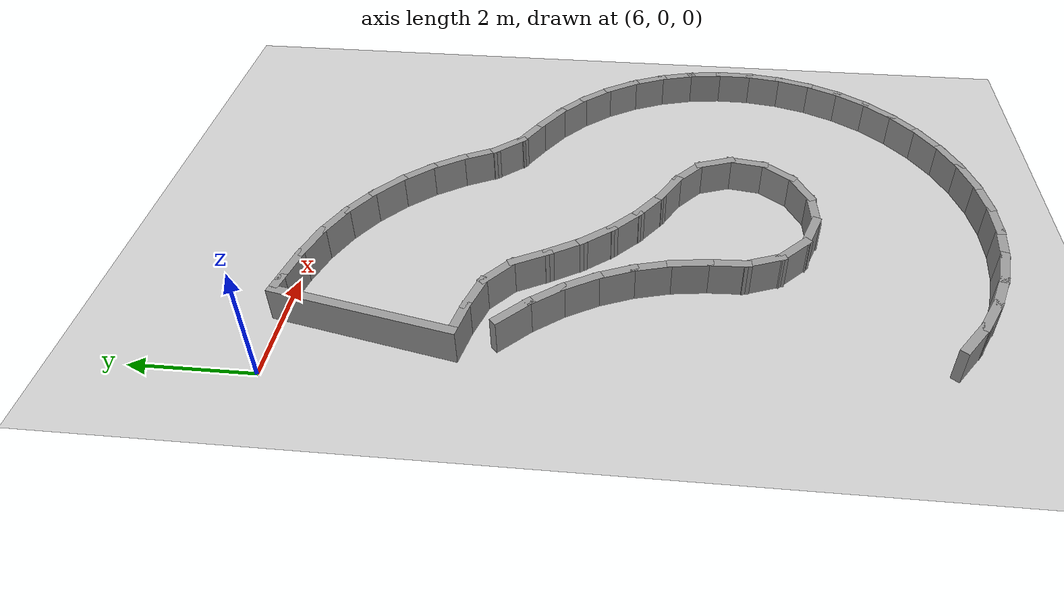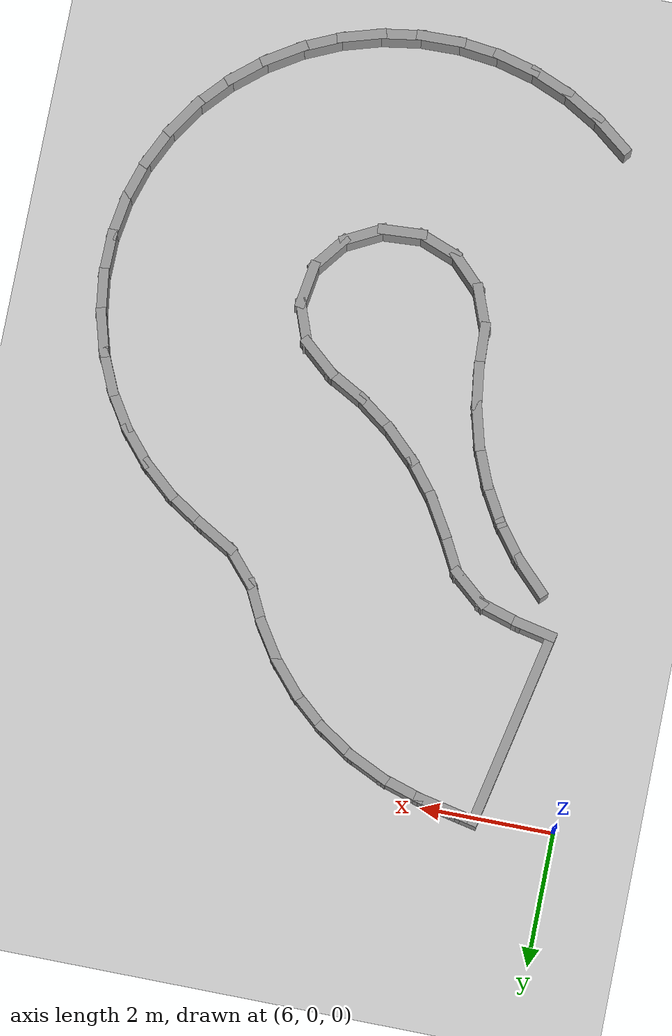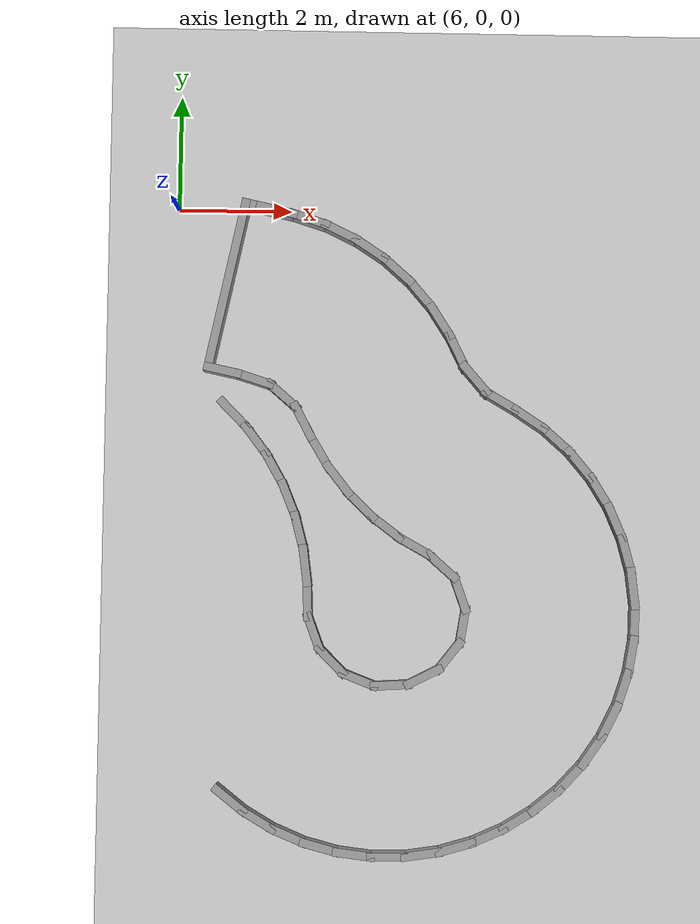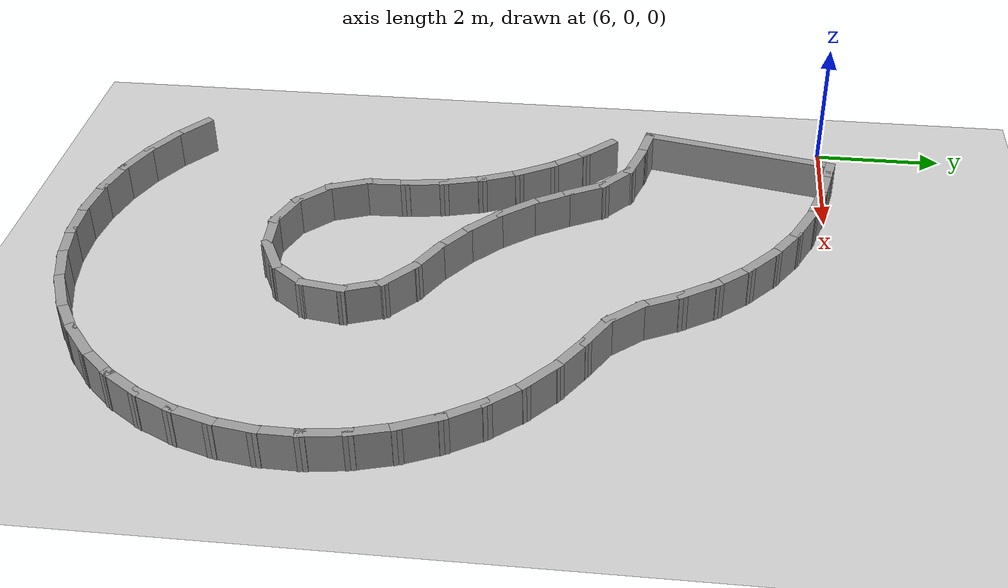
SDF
<sdf version="1.7">
 <world name="default">
  <model name="ground_plane">
   <static>1</static>
   <link name="link">
    <collision name="collision">
     <geometry><plane><normal>0 0 1</normal><size>100 100</size></plane></geometry>
     <surface><friction><ode><mu>100</mu><mu2>50</mu2></ode></friction></surface>
    </collision>
    <visual name="visual">
     <cast_shadows>0</cast_shadows>
     <geometry><plane><normal>0 0 1</normal><size>100 100</size></plane></geometry>
     <material>
      <script><uri>file://media/materials/scripts/gazebo.material</uri><name>Gazebo/Grey</name></script>
     </material>
    </visual>
   </link>
  </model>
  <model name="rand_turn_13">
   <link name="Wall_28">
    <collision name="Wall_28_Collision">
     <geometry><box><size>0.7495 0.1500 0.6000</size></box></geometry>
     <pose>0 0 0.3000 0 -0 0</pose>
    </collision>
    <visual name="Wall_28_Visual">
     <pose>0 0 0.3000 0 -0 0</pose>
     <geometry><box><size>0.7495 0.1500 0.6000</size></box></geometry>
     <material>
      <script><uri>file://media/materials/scripts/gazebo.material</uri><name>Gazebo/Grey</name></script>
      <ambient>1 1 1 1</ambient>
     </material>
    </visual>
    <pose>7.0639 -3.6551 0 0 -0 -0.78686</pose>
   </link>
   <link name="Wall_29">
    <collision name="Wall_29_Collision">
     <geometry><box><size>0.7495 0.1500 0.6000</size></box></geometry>
     <pose>0 0 0.3000 0 -0 0</pose>
    </collision>
    <visual name="Wall_29_Visual">
     <pose>0 0 0.3000 0 -0 0</pose>
     <geometry><box><size>0.7495 0.1500 0.6000</size></box></geometry>
     <material>
      <script><uri>file://media/materials/scripts/gazebo.material</uri><name>Gazebo/Grey</name></script>
      <ambient>1 1 1 1</ambient>
     </material>
    </visual>
    <pose>7.4578 -4.1054 0 0 -0 -0.91745</pose>
   </link>
   <link name="Wall_30">
    <collision name="Wall_30_Collision">
     <geometry><box><size>0.7495 0.1500 0.6000</size></box></geometry>
     <pose>0 0 0.3000 0 -0 0</pose>
    </collision>
    <visual name="Wall_30_Visual">
     <pose>0 0 0.3000 0 -0 0</pose>
     <geometry><box><size>0.7495 0.1500 0.6000</size></box></geometry>
     <material>
      <script><uri>file://media/materials/scripts/gazebo.material</uri><name>Gazebo/Grey</name></script>
      <ambient>1 1 1 1</ambient>
     </material>
    </visual>
    <pose>7.7896 -4.6032 0 0 -0 -1.04805</pose>
   </link>
   <link name="Wall_31">
    <collision name="Wall_31_Collision">
     <geometry><box><size>0.7495 0.1500 0.6000</size></box></geometry>
     <pose>0 0 0.3000 0 -0 0</pose>
    </collision>
    <visual name="Wall_31_Visual">
     <pose>0 0 0.3000 0 -0 0</pose>
     <geometry><box><size>0.7495 0.1500 0.6000</size></box></geometry>
     <material>
      <script><uri>file://media/materials/scripts/gazebo.material</uri><name>Gazebo/Grey</name></script>
      <ambient>1 1 1 1</ambient>
     </material>
    </visual>
    <pose>8.0539 -5.1399 0 0 -0 -1.17864</pose>
   </link>
   <link name="Wall_32">
    <collision name="Wall_32_Collision">
     <geometry><box><size>0.7495 0.1500 0.6000</size></box></geometry>
     <pose>0 0 0.3000 0 -0 0</pose>
    </collision>
    <visual name="Wall_32_Visual">
     <pose>0 0 0.3000 0 -0 0</pose>
     <geometry><box><size>0.7495 0.1500 0.6000</size></box></geometry>
     <material>
      <script><uri>file://media/materials/scripts/gazebo.material</uri><name>Gazebo/Grey</name></script>
      <ambient>1 1 1 1</ambient>
     </material>
    </visual>
    <pose>8.2459 -5.7065 0 0 -0 -1.30923</pose>
   </link>
   <link name="Wall_33">
    <collision name="Wall_33_Collision">
     <geometry><box><size>0.7495 0.1500 0.6000</size></box></geometry>
     <pose>0 0 0.3000 0 -0 0</pose>
    </collision>
    <visual name="Wall_33_Visual">
     <pose>0 0 0.3000 0 -0 0</pose>
     <geometry><box><size>0.7495 0.1500 0.6000</size></box></geometry>
     <material>
      <script><uri>file://media/materials/scripts/gazebo.material</uri><name>Gazebo/Grey</name></script>
      <ambient>1 1 1 1</ambient>
     </material>
    </visual>
    <pose>8.3626 -6.2933 0 0 -0 -1.43982</pose>
   </link>
   <link name="Wall_34">
    <collision name="Wall_34_Collision">
     <geometry><box><size>0.7495 0.1500 0.6000</size></box></geometry>
     <pose>0 0 0.3000 0 -0 0</pose>
    </collision>
    <visual name="Wall_34_Visual">
     <pose>0 0 0.3000 0 -0 0</pose>
     <geometry><box><size>0.7495 0.1500 0.6000</size></box></geometry>
     <material>
      <script><uri>file://media/materials/scripts/gazebo.material</uri><name>Gazebo/Grey</name></script>
      <ambient>1 1 1 1</ambient>
     </material>
    </visual>
    <pose>8.4148 -6.8899 0 0 -0 -1.52728</pose>
   </link>
   <link name="Wall_35">
    <collision name="Wall_35_Collision">
     <geometry><box><size>0.7456 0.1500 0.6000</size></box></geometry>
     <pose>0 0 0.3000 0 -0 0</pose>
    </collision>
    <visual name="Wall_35_Visual">
     <pose>0 0 0.3000 0 -0 0</pose>
     <geometry><box><size>0.7456 0.1500 0.6000</size></box></geometry>
     <material>
      <script><uri>file://media/materials/scripts/gazebo.material</uri><name>Gazebo/Grey</name></script>
      <ambient>1 1 1 1</ambient>
     </material>
    </visual>
    <pose>8.5335 -7.4678 0 0 -0 -1.20817</pose>
   </link>
   <link name="Wall_36">
    <collision name="Wall_36_Collision">
     <geometry><box><size>0.7455 0.1500 0.6000</size></box></geometry>
     <pose>0 0 0.3000 0 -0 0</pose>
    </collision>
    <visual name="Wall_36_Visual">
     <pose>0 0 0.3000 0 -0 0</pose>
     <geometry><box><size>0.7455 0.1500 0.6000</size></box></geometry>
     <material>
      <script><uri>file://media/materials/scripts/gazebo.material</uri><name>Gazebo/Grey</name></script>
      <ambient>1 1 1 1</ambient>
     </material>
    </visual>
    <pose>8.8494 -7.9570 0 0 -0 -0.78662</pose>
   </link>
   <link name="Wall_37">
    <collision name="Wall_37_Collision">
     <geometry><box><size>0.7455 0.1500 0.6000</size></box></geometry>
     <pose>0 0 0.3000 0 -0 0</pose>
    </collision>
    <visual name="Wall_37_Visual">
     <pose>0 0 0.3000 0 -0 0</pose>
     <geometry><box><size>0.7455 0.1500 0.6000</size></box></geometry>
     <material>
      <script><uri>file://media/materials/scripts/gazebo.material</uri><name>Gazebo/Grey</name></script>
      <ambient>1 1 1 1</ambient>
     </material>
    </visual>
    <pose>9.3378 -8.2742 0 0 -0 -0.36515</pose>
   </link>
   <link name="Wall_38">
    <collision name="Wall_38_Collision">
     <geometry><box><size>0.7455 0.1500 0.6000</size></box></geometry>
     <pose>0 0 0.3000 0 -0 0</pose>
    </collision>
    <visual name="Wall_38_Visual">
     <pose>0 0 0.3000 0 -0 0</pose>
     <geometry><box><size>0.7455 0.1500 0.6000</size></box></geometry>
     <material>
      <script><uri>file://media/materials/scripts/gazebo.material</uri><name>Gazebo/Grey</name></script>
      <ambient>1 1 1 1</ambient>
     </material>
    </visual>
    <pose>9.9132 -8.3627 0 0 -0 0.05997</pose>
   </link>
   <link name="Wall_39">
    <collision name="Wall_39_Collision">
     <geometry><box><size>0.7458 0.1500 0.6000</size></box></geometry>
     <pose>0 0 0.3000 0 -0 0</pose>
    </collision>
    <visual name="Wall_39_Visual">
     <pose>0 0 0.3000 0 -0 0</pose>
     <geometry><box><size>0.7458 0.1500 0.6000</size></box></geometry>
     <material>
      <script><uri>file://media/materials/scripts/gazebo.material</uri><name>Gazebo/Grey</name></script>
      <ambient>1 1 1 1</ambient>
     </material>
    </visual>
    <pose>10.4753 -8.2085 0 0 -0 0.47515</pose>
   </link>
   <link name="Wall_40">
    <collision name="Wall_40_Collision">
     <geometry><box><size>0.7437 0.1500 0.6000</size></box></geometry>
     <pose>0 0 0.3000 0 -0 0</pose>
    </collision>
    <visual name="Wall_40_Visual">
     <pose>0 0 0.3000 0 -0 0</pose>
     <geometry><box><size>0.7437 0.1500 0.6000</size></box></geometry>
     <material>
      <script><uri>file://media/materials/scripts/gazebo.material</uri><name>Gazebo/Grey</name></script>
      <ambient>1 1 1 1</ambient>
     </material>
    </visual>
    <pose>10.9215 -7.8373 0 0 -0 0.91355</pose>
   </link>
   <link name="Wall_41">
    <collision name="Wall_41_Collision">
     <geometry><box><size>0.7436 0.1500 0.6000</size></box></geometry>
     <pose>0 0 0.3000 0 -0 0</pose>
    </collision>
    <visual name="Wall_41_Visual">
     <pose>0 0 0.3000 0 -0 0</pose>
     <geometry><box><size>0.7436 0.1500 0.6000</size></box></geometry>
     <material>
      <script><uri>file://media/materials/scripts/gazebo.material</uri><name>Gazebo/Grey</name></script>
      <ambient>1 1 1 1</ambient>
     </material>
    </visual>
    <pose>11.1479 -7.3089 0 0 -0 1.41856</pose>
   </link>
   <link name="Wall_42">
    <collision name="Wall_42_Collision">
     <geometry><box><size>0.7436 0.1500 0.6000</size></box></geometry>
     <pose>0 0 0.3000 0 -0 0</pose>
    </collision>
    <visual name="Wall_42_Visual">
     <pose>0 0 0.3000 0 -0 0</pose>
     <geometry><box><size>0.7436 0.1500 0.6000</size></box></geometry>
     <material>
      <script><uri>file://media/materials/scripts/gazebo.material</uri><name>Gazebo/Grey</name></script>
      <ambient>1 1 1 1</ambient>
     </material>
    </visual>
    <pose>11.0906 -6.7368 0 0 -0 1.92269</pose>
   </link>
   <link name="Wall_43">
    <collision name="Wall_43_Collision">
     <geometry><box><size>0.7436 0.1500 0.6000</size></box></geometry>
     <pose>0 0 0.3000 0 -0 0</pose>
    </collision>
    <visual name="Wall_43_Visual">
     <pose>0 0 0.3000 0 -0 0</pose>
     <geometry><box><size>0.7436 0.1500 0.6000</size></box></geometry>
     <material>
      <script><uri>file://media/materials/scripts/gazebo.material</uri><name>Gazebo/Grey</name></script>
      <ambient>1 1 1 1</ambient>
     </material>
    </visual>
    <pose>10.7642 -6.2636 0 0 -0 2.42638</pose>
   </link>
   <link name="Wall_44">
    <collision name="Wall_44_Collision">
     <geometry><box><size>0.7496 0.1500 0.6000</size></box></geometry>
     <pose>0 0 0.3000 0 -0 0</pose>
    </collision>
    <visual name="Wall_44_Visual">
     <pose>0 0 0.3000 0 -0 0</pose>
     <geometry><box><size>0.7496 0.1500 0.6000</size></box></geometry>
     <material>
      <script><uri>file://media/materials/scripts/gazebo.material</uri><name>Gazebo/Grey</name></script>
      <ambient>1 1 1 1</ambient>
     </material>
    </visual>
    <pose>10.2779 -5.9237 0 0 -0 2.63589</pose>
   </link>
   <link name="Wall_45">
    <collision name="Wall_45_Collision">
     <geometry><box><size>0.7495 0.1500 0.6000</size></box></geometry>
     <pose>0 0 0.3000 0 -0 0</pose>
    </collision>
    <visual name="Wall_45_Visual">
     <pose>0 0 0.3000 0 -0 0</pose>
     <geometry><box><size>0.7495 0.1500 0.6000</size></box></geometry>
     <material>
      <script><uri>file://media/materials/scripts/gazebo.material</uri><name>Gazebo/Grey</name></script>
      <ambient>1 1 1 1</ambient>
     </material>
    </visual>
    <pose>9.7745 -5.6004 0 0 -0 2.50560</pose>
   </link>
   <link name="Wall_46">
    <collision name="Wall_46_Collision">
     <geometry><box><size>0.7495 0.1500 0.6000</size></box></geometry>
     <pose>0 0 0.3000 0 -0 0</pose>
    </collision>
    <visual name="Wall_46_Visual">
     <pose>0 0 0.3000 0 -0 0</pose>
     <geometry><box><size>0.7495 0.1500 0.6000</size></box></geometry>
     <material>
      <script><uri>file://media/materials/scripts/gazebo.material</uri><name>Gazebo/Grey</name></script>
      <ambient>1 1 1 1</ambient>
     </material>
    </visual>
    <pose>9.3175 -5.2144 0 0 -0 2.37460</pose>
   </link>
   <link name="Wall_47">
    <collision name="Wall_47_Collision">
     <geometry><box><size>0.7495 0.1500 0.6000</size></box></geometry>
     <pose>0 0 0.3000 0 -0 0</pose>
    </collision>
    <visual name="Wall_47_Visual">
     <pose>0 0 0.3000 0 -0 0</pose>
     <geometry><box><size>0.7495 0.1500 0.6000</size></box></geometry>
     <material>
      <script><uri>file://media/materials/scripts/gazebo.material</uri><name>Gazebo/Grey</name></script>
      <ambient>1 1 1 1</ambient>
     </material>
    </visual>
    <pose>8.9148 -4.7719 0 0 -0 2.24360</pose>
   </link>
   <link name="Wall_48">
    <collision name="Wall_48_Collision">
     <geometry><box><size>0.7495 0.1500 0.6000</size></box></geometry>
     <pose>0 0 0.3000 0 -0 0</pose>
    </collision>
    <visual name="Wall_48_Visual">
     <pose>0 0 0.3000 0 -0 0</pose>
     <geometry><box><size>0.7495 0.1500 0.6000</size></box></geometry>
     <material>
      <script><uri>file://media/materials/scripts/gazebo.material</uri><name>Gazebo/Grey</name></script>
      <ambient>1 1 1 1</ambient>
     </material>
    </visual>
    <pose>8.5735 -4.2806 0 0 -0 2.11259</pose>
   </link>
   <link name="Wall_49">
    <collision name="Wall_49_Collision">
     <geometry><box><size>0.7487 0.1500 0.6000</size></box></geometry>
     <pose>0 0 0.3000 0 -0 0</pose>
    </collision>
    <visual name="Wall_49_Visual">
     <pose>0 0 0.3000 0 -0 0</pose>
     <geometry><box><size>0.7487 0.1500 0.6000</size></box></geometry>
     <material>
      <script><uri>file://media/materials/scripts/gazebo.material</uri><name>Gazebo/Grey</name></script>
      <ambient>1 1 1 1</ambient>
     </material>
    </visual>
    <pose>8.2774 -3.7600 0 0 -0 2.06303</pose>
   </link>
   <link name="Wall_50">
    <collision name="Wall_50_Collision">
     <geometry><box><size>0.7452 0.1500 0.6000</size></box></geometry>
     <pose>0 0 0.3000 0 -0 0</pose>
    </collision>
    <visual name="Wall_50_Visual">
     <pose>0 0 0.3000 0 -0 0</pose>
     <geometry><box><size>0.7452 0.1500 0.6000</size></box></geometry>
     <material>
      <script><uri>file://media/materials/scripts/gazebo.material</uri><name>Gazebo/Grey</name></script>
      <ambient>1 1 1 1</ambient>
     </material>
    </visual>
    <pose>7.9091 -3.3036 0 0 -0 2.43771</pose>
   </link>
   <link name="Wall_51">
    <collision name="Wall_51_Collision">
     <geometry><box><size>0.7473 0.1500 0.6000</size></box></geometry>
     <pose>0 0 0.3000 0 -0 0</pose>
    </collision>
    <visual name="Wall_51_Visual">
     <pose>0 0 0.3000 0 -0 0</pose>
     <geometry><box><size>0.7473 0.1500 0.6000</size></box></geometry>
     <material>
      <script><uri>file://media/materials/scripts/gazebo.material</uri><name>Gazebo/Grey</name></script>
      <ambient>1 1 1 1</ambient>
     </material>
    </visual>
    <pose>7.3965 -3.0239 0 0 -0 2.84577</pose>
   </link>
   <link name="Wall_52">
    <collision name="Wall_52_Collision">
     <geometry><box><size>0.6847 0.1500 0.6000</size></box></geometry>
     <pose>0 0 0.3000 0 -0 0</pose>
    </collision>
    <visual name="Wall_52_Visual">
     <pose>0 0 0.3000 0 -0 0</pose>
     <geometry><box><size>0.6847 0.1500 0.6000</size></box></geometry>
     <material>
      <script><uri>file://media/materials/scripts/gazebo.material</uri><name>Gazebo/Grey</name></script>
      <ambient>1 1 1 1</ambient>
     </material>
    </visual>
    <pose>6.8491 -2.8820 0 0 -0 2.93494</pose>
   </link>
   <link name="Wall_86">
    <collision name="Wall_86_Collision">
     <geometry><box><size>0.7495 0.1500 0.6000</size></box></geometry>
     <pose>0 0 0.3000 0 -0 0</pose>
    </collision>
    <visual name="Wall_86_Visual">
     <pose>0 0 0.3000 0 -0 0</pose>
     <geometry><box><size>0.7495 0.1500 0.6000</size></box></geometry>
     <material>
      <script><uri>file://media/materials/scripts/gazebo.material</uri><name>Gazebo/Grey</name></script>
      <ambient>1 1 1 1</ambient>
     </material>
    </visual>
    <pose>7.1244 -10.4199 0 0 -0 -0.66643</pose>
   </link>
   <link name="Wall_87">
    <collision name="Wall_87_Collision">
     <geometry><box><size>0.7495 0.1500 0.6000</size></box></geometry>
     <pose>0 0 0.3000 0 -0 0</pose>
    </collision>
    <visual name="Wall_87_Visual">
     <pose>0 0 0.3000 0 -0 0</pose>
     <geometry><box><size>0.7495 0.1500 0.6000</size></box></geometry>
     <material>
      <script><uri>file://media/materials/scripts/gazebo.material</uri><name>Gazebo/Grey</name></script>
      <ambient>1 1 1 1</ambient>
     </material>
    </visual>
    <pose>7.6187 -10.7567 0 0 -0 -0.52988</pose>
   </link>
   <link name="Wall_88">
    <collision name="Wall_88_Collision">
     <geometry><box><size>0.7495 0.1500 0.6000</size></box></geometry>
     <pose>0 0 0.3000 0 -0 0</pose>
    </collision>
    <visual name="Wall_88_Visual">
     <pose>0 0 0.3000 0 -0 0</pose>
     <geometry><box><size>0.7495 0.1500 0.6000</size></box></geometry>
     <material>
      <script><uri>file://media/materials/scripts/gazebo.material</uri><name>Gazebo/Grey</name></script>
      <ambient>1 1 1 1</ambient>
     </material>
    </visual>
    <pose>8.1542 -11.0231 0 0 -0 -0.39333</pose>
   </link>
   <link name="Wall_89">
    <collision name="Wall_89_Collision">
     <geometry><box><size>0.7495 0.1500 0.6000</size></box></geometry>
     <pose>0 0 0.3000 0 -0 0</pose>
    </collision>
    <visual name="Wall_89_Visual">
     <pose>0 0 0.3000 0 -0 0</pose>
     <geometry><box><size>0.7495 0.1500 0.6000</size></box></geometry>
     <material>
      <script><uri>file://media/materials/scripts/gazebo.material</uri><name>Gazebo/Grey</name></script>
      <ambient>1 1 1 1</ambient>
     </material>
    </visual>
    <pose>8.7210 -11.2141 0 0 -0 -0.25678</pose>
   </link>
   <link name="Wall_90">
    <collision name="Wall_90_Collision">
     <geometry><box><size>0.7495 0.1500 0.6000</size></box></geometry>
     <pose>0 0 0.3000 0 -0 0</pose>
    </collision>
    <visual name="Wall_90_Visual">
     <pose>0 0 0.3000 0 -0 0</pose>
     <geometry><box><size>0.7495 0.1500 0.6000</size></box></geometry>
     <material>
      <script><uri>file://media/materials/scripts/gazebo.material</uri><name>Gazebo/Grey</name></script>
      <ambient>1 1 1 1</ambient>
     </material>
    </visual>
    <pose>9.3085 -11.3261 0 0 -0 -0.12017</pose>
   </link>
   <link name="Wall_91">
    <collision name="Wall_91_Collision">
     <geometry><box><size>0.7495 0.1500 0.6000</size></box></geometry>
     <pose>0 0 0.3000 0 -0 0</pose>
    </collision>
    <visual name="Wall_91_Visual">
     <pose>0 0 0.3000 0 -0 0</pose>
     <geometry><box><size>0.7495 0.1500 0.6000</size></box></geometry>
     <material>
      <script><uri>file://media/materials/scripts/gazebo.material</uri><name>Gazebo/Grey</name></script>
      <ambient>1 1 1 1</ambient>
     </material>
    </visual>
    <pose>9.9058 -11.3566 0 0 -0 0.01834</pose>
   </link>
   <link name="Wall_92">
    <collision name="Wall_92_Collision">
     <geometry><box><size>0.7495 0.1500 0.6000</size></box></geometry>
     <pose>0 0 0.3000 0 -0 0</pose>
    </collision>
    <visual name="Wall_92_Visual">
     <pose>0 0 0.3000 0 -0 0</pose>
     <geometry><box><size>0.7495 0.1500 0.6000</size></box></geometry>
     <material>
      <script><uri>file://media/materials/scripts/gazebo.material</uri><name>Gazebo/Grey</name></script>
      <ambient>1 1 1 1</ambient>
     </material>
    </visual>
    <pose>10.5017 -11.3051 0 0 -0 0.15411</pose>
   </link>
   <link name="Wall_93">
    <collision name="Wall_93_Collision">
     <geometry><box><size>0.7495 0.1500 0.6000</size></box></geometry>
     <pose>0 0 0.3000 0 -0 0</pose>
    </collision>
    <visual name="Wall_93_Visual">
     <pose>0 0 0.3000 0 -0 0</pose>
     <geometry><box><size>0.7495 0.1500 0.6000</size></box></geometry>
     <material>
      <script><uri>file://media/materials/scripts/gazebo.material</uri><name>Gazebo/Grey</name></script>
      <ambient>1 1 1 1</ambient>
     </material>
    </visual>
    <pose>11.0851 -11.1734 0 0 -0 0.28968</pose>
   </link>
   <link name="Wall_94">
    <collision name="Wall_94_Collision">
     <geometry><box><size>0.7495 0.1500 0.6000</size></box></geometry>
     <pose>0 0 0.3000 0 -0 0</pose>
    </collision>
    <visual name="Wall_94_Visual">
     <pose>0 0 0.3000 0 -0 0</pose>
     <geometry><box><size>0.7495 0.1500 0.6000</size></box></geometry>
     <material>
      <script><uri>file://media/materials/scripts/gazebo.material</uri><name>Gazebo/Grey</name></script>
      <ambient>1 1 1 1</ambient>
     </material>
    </visual>
    <pose>11.6454 -10.9642 0 0 -0 0.42525</pose>
   </link>
   <link name="Wall_95">
    <collision name="Wall_95_Collision">
     <geometry><box><size>0.7495 0.1500 0.6000</size></box></geometry>
     <pose>0 0 0.3000 0 -0 0</pose>
    </collision>
    <visual name="Wall_95_Visual">
     <pose>0 0 0.3000 0 -0 0</pose>
     <geometry><box><size>0.7495 0.1500 0.6000</size></box></geometry>
     <material>
      <script><uri>file://media/materials/scripts/gazebo.material</uri><name>Gazebo/Grey</name></script>
      <ambient>1 1 1 1</ambient>
     </material>
    </visual>
    <pose>12.1723 -10.6811 0 0 -0 0.56082</pose>
   </link>
   <link name="Wall_96">
    <collision name="Wall_96_Collision">
     <geometry><box><size>0.7495 0.1500 0.6000</size></box></geometry>
     <pose>0 0 0.3000 0 -0 0</pose>
    </collision>
    <visual name="Wall_96_Visual">
     <pose>0 0 0.3000 0 -0 0</pose>
     <geometry><box><size>0.7495 0.1500 0.6000</size></box></geometry>
     <material>
      <script><uri>file://media/materials/scripts/gazebo.material</uri><name>Gazebo/Grey</name></script>
      <ambient>1 1 1 1</ambient>
     </material>
    </visual>
    <pose>12.6561 -10.3294 0 0 -0 0.69639</pose>
   </link>
   <link name="Wall_97">
    <collision name="Wall_97_Collision">
     <geometry><box><size>0.7494 0.1500 0.6000</size></box></geometry>
     <pose>0 0 0.3000 0 -0 0</pose>
    </collision>
    <visual name="Wall_97_Visual">
     <pose>0 0 0.3000 0 -0 0</pose>
     <geometry><box><size>0.7494 0.1500 0.6000</size></box></geometry>
     <material>
      <script><uri>file://media/materials/scripts/gazebo.material</uri><name>Gazebo/Grey</name></script>
      <ambient>1 1 1 1</ambient>
     </material>
    </visual>
    <pose>13.0876 -9.9152 0 0 -0 0.83336</pose>
   </link>
   <link name="Wall_98">
    <collision name="Wall_98_Collision">
     <geometry><box><size>0.7494 0.1500 0.6000</size></box></geometry>
     <pose>0 0 0.3000 0 -0 0</pose>
    </collision>
    <visual name="Wall_98_Visual">
     <pose>0 0 0.3000 0 -0 0</pose>
     <geometry><box><size>0.7494 0.1500 0.6000</size></box></geometry>
     <material>
      <script><uri>file://media/materials/scripts/gazebo.material</uri><name>Gazebo/Grey</name></script>
      <ambient>1 1 1 1</ambient>
     </material>
    </visual>
    <pose>13.4560 -9.4445 0 0 -0 0.98019</pose>
   </link>
   <link name="Wall_99">
    <collision name="Wall_99_Collision">
     <geometry><box><size>0.7494 0.1500 0.6000</size></box></geometry>
     <pose>0 0 0.3000 0 -0 0</pose>
    </collision>
    <visual name="Wall_99_Visual">
     <pose>0 0 0.3000 0 -0 0</pose>
     <geometry><box><size>0.7494 0.1500 0.6000</size></box></geometry>
     <material>
      <script><uri>file://media/materials/scripts/gazebo.material</uri><name>Gazebo/Grey</name></script>
      <ambient>1 1 1 1</ambient>
     </material>
    </visual>
    <pose>13.7523 -8.9252 0 0 -0 1.12430</pose>
   </link>
   <link name="Wall_100">
    <collision name="Wall_100_Collision">
     <geometry><box><size>0.7495 0.1500 0.6000</size></box></geometry>
     <pose>0 0 0.3000 0 -0 0</pose>
    </collision>
    <visual name="Wall_100_Visual">
     <pose>0 0 0.3000 0 -0 0</pose>
     <geometry><box><size>0.7495 0.1500 0.6000</size></box></geometry>
     <material>
      <script><uri>file://media/materials/scripts/gazebo.material</uri><name>Gazebo/Grey</name></script>
      <ambient>1 1 1 1</ambient>
     </material>
    </visual>
    <pose>13.9710 -8.3687 0 0 -0 1.26828</pose>
   </link>
   <link name="Wall_101">
    <collision name="Wall_101_Collision">
     <geometry><box><size>0.7495 0.1500 0.6000</size></box></geometry>
     <pose>0 0 0.3000 0 -0 0</pose>
    </collision>
    <visual name="Wall_101_Visual">
     <pose>0 0 0.3000 0 -0 0</pose>
     <geometry><box><size>0.7495 0.1500 0.6000</size></box></geometry>
     <material>
      <script><uri>file://media/materials/scripts/gazebo.material</uri><name>Gazebo/Grey</name></script>
      <ambient>1 1 1 1</ambient>
     </material>
    </visual>
    <pose>14.1074 -7.7866 0 0 -0 1.41320</pose>
   </link>
   <link name="Wall_102">
    <collision name="Wall_102_Collision">
     <geometry><box><size>0.7495 0.1500 0.6000</size></box></geometry>
     <pose>0 0 0.3000 0 -0 0</pose>
    </collision>
    <visual name="Wall_102_Visual">
     <pose>0 0 0.3000 0 -0 0</pose>
     <geometry><box><size>0.7495 0.1500 0.6000</size></box></geometry>
     <material>
      <script><uri>file://media/materials/scripts/gazebo.material</uri><name>Gazebo/Grey</name></script>
      <ambient>1 1 1 1</ambient>
     </material>
    </visual>
    <pose>14.1584 -7.1908 0 0 -0 1.55760</pose>
   </link>
   <link name="Wall_103">
    <collision name="Wall_103_Collision">
     <geometry><box><size>0.7494 0.1500 0.6000</size></box></geometry>
     <pose>0 0 0.3000 0 -0 0</pose>
    </collision>
    <visual name="Wall_103_Visual">
     <pose>0 0 0.3000 0 -0 0</pose>
     <geometry><box><size>0.7494 0.1500 0.6000</size></box></geometry>
     <material>
      <script><uri>file://media/materials/scripts/gazebo.material</uri><name>Gazebo/Grey</name></script>
      <ambient>1 1 1 1</ambient>
     </material>
    </visual>
    <pose>14.1232 -6.5940 0 0 -0 1.70157</pose>
   </link>
   <link name="Wall_104">
    <collision name="Wall_104_Collision">
     <geometry><box><size>0.7494 0.1500 0.6000</size></box></geometry>
     <pose>0 0 0.3000 0 -0 0</pose>
    </collision>
    <visual name="Wall_104_Visual">
     <pose>0 0 0.3000 0 -0 0</pose>
     <geometry><box><size>0.7494 0.1500 0.6000</size></box></geometry>
     <material>
      <script><uri>file://media/materials/scripts/gazebo.material</uri><name>Gazebo/Grey</name></script>
      <ambient>1 1 1 1</ambient>
     </material>
    </visual>
    <pose>14.0028 -6.0084 0 0 -0 1.84555</pose>
   </link>
   <link name="Wall_105">
    <collision name="Wall_105_Collision">
     <geometry><box><size>0.7494 0.1500 0.6000</size></box></geometry>
     <pose>0 0 0.3000 0 -0 0</pose>
    </collision>
    <visual name="Wall_105_Visual">
     <pose>0 0 0.3000 0 -0 0</pose>
     <geometry><box><size>0.7494 0.1500 0.6000</size></box></geometry>
     <material>
      <script><uri>file://media/materials/scripts/gazebo.material</uri><name>Gazebo/Grey</name></script>
      <ambient>1 1 1 1</ambient>
     </material>
    </visual>
    <pose>13.7997 -5.4461 0 0 -0 1.98953</pose>
   </link>
   <link name="Wall_106">
    <collision name="Wall_106_Collision">
     <geometry><box><size>0.7494 0.1500 0.6000</size></box></geometry>
     <pose>0 0 0.3000 0 -0 0</pose>
    </collision>
    <visual name="Wall_106_Visual">
     <pose>0 0 0.3000 0 -0 0</pose>
     <geometry><box><size>0.7494 0.1500 0.6000</size></box></geometry>
     <material>
      <script><uri>file://media/materials/scripts/gazebo.material</uri><name>Gazebo/Grey</name></script>
      <ambient>1 1 1 1</ambient>
     </material>
    </visual>
    <pose>13.5179 -4.9188 0 0 -0 2.13350</pose>
   </link>
   <link name="Wall_107">
    <collision name="Wall_107_Collision">
     <geometry><box><size>0.7495 0.1500 0.6000</size></box></geometry>
     <pose>0 0 0.3000 0 -0 0</pose>
    </collision>
    <visual name="Wall_107_Visual">
     <pose>0 0 0.3000 0 -0 0</pose>
     <geometry><box><size>0.7495 0.1500 0.6000</size></box></geometry>
     <material>
      <script><uri>file://media/materials/scripts/gazebo.material</uri><name>Gazebo/Grey</name></script>
      <ambient>1 1 1 1</ambient>
     </material>
    </visual>
    <pose>13.1634 -4.4373 0 0 -0 2.27748</pose>
   </link>
   <link name="Wall_108">
    <collision name="Wall_108_Collision">
     <geometry><box><size>0.7495 0.1500 0.6000</size></box></geometry>
     <pose>0 0 0.3000 0 -0 0</pose>
    </collision>
    <visual name="Wall_108_Visual">
     <pose>0 0 0.3000 0 -0 0</pose>
     <geometry><box><size>0.7495 0.1500 0.6000</size></box></geometry>
     <material>
      <script><uri>file://media/materials/scripts/gazebo.material</uri><name>Gazebo/Grey</name></script>
      <ambient>1 1 1 1</ambient>
     </material>
    </visual>
    <pose>12.7433 -4.0119 0 0 -0 2.42230</pose>
   </link>
   <link name="Wall_109">
    <collision name="Wall_109_Collision">
     <geometry><box><size>0.7495 0.1500 0.6000</size></box></geometry>
     <pose>0 0 0.3000 0 -0 0</pose>
    </collision>
    <visual name="Wall_109_Visual">
     <pose>0 0 0.3000 0 -0 0</pose>
     <geometry><box><size>0.7495 0.1500 0.6000</size></box></geometry>
     <material>
      <script><uri>file://media/materials/scripts/gazebo.material</uri><name>Gazebo/Grey</name></script>
      <ambient>1 1 1 1</ambient>
     </material>
    </visual>
    <pose>12.2662 -3.6514 0 0 -0 2.56680</pose>
   </link>
   <link name="Wall_110">
    <collision name="Wall_110_Collision">
     <geometry><box><size>0.7488 0.1500 0.6000</size></box></geometry>
     <pose>0 0 0.3000 0 -0 0</pose>
    </collision>
    <visual name="Wall_110_Visual">
     <pose>0 0 0.3000 0 -0 0</pose>
     <geometry><box><size>0.7488 0.1500 0.6000</size></box></geometry>
     <material>
      <script><uri>file://media/materials/scripts/gazebo.material</uri><name>Gazebo/Grey</name></script>
      <ambient>1 1 1 1</ambient>
     </material>
    </visual>
    <pose>11.7551 -3.3392 0 0 -0 2.61965</pose>
   </link>
   <link name="Wall_111">
    <collision name="Wall_111_Collision">
     <geometry><box><size>0.7465 0.1500 0.6000</size></box></geometry>
     <pose>0 0 0.3000 0 -0 0</pose>
    </collision>
    <visual name="Wall_111_Visual">
     <pose>0 0 0.3000 0 -0 0</pose>
     <geometry><box><size>0.7465 0.1500 0.6000</size></box></geometry>
     <material>
      <script><uri>file://media/materials/scripts/gazebo.material</uri><name>Gazebo/Grey</name></script>
      <ambient>1 1 1 1</ambient>
     </material>
    </visual>
    <pose>11.2991 -2.9656 0 0 -0 2.28997</pose>
   </link>
   <link name="Wall_112">
    <collision name="Wall_112_Collision">
     <geometry><box><size>0.7497 0.1500 0.6000</size></box></geometry>
     <pose>0 0 0.3000 0 -0 0</pose>
    </collision>
    <visual name="Wall_112_Visual">
     <pose>0 0 0.3000 0 -0 0</pose>
     <geometry><box><size>0.7497 0.1500 0.6000</size></box></geometry>
     <material>
      <script><uri>file://media/materials/scripts/gazebo.material</uri><name>Gazebo/Grey</name></script>
      <ambient>1 1 1 1</ambient>
     </material>
    </visual>
    <pose>10.9679 -2.4733 0 0 -0 2.03689</pose>
   </link>
   <link name="Wall_113">
    <collision name="Wall_113_Collision">
     <geometry><box><size>0.7495 0.1500 0.6000</size></box></geometry>
     <pose>0 0 0.3000 0 -0 0</pose>
    </collision>
    <visual name="Wall_113_Visual">
     <pose>0 0 0.3000 0 -0 0</pose>
     <geometry><box><size>0.7495 0.1500 0.6000</size></box></geometry>
     <material>
      <script><uri>file://media/materials/scripts/gazebo.material</uri><name>Gazebo/Grey</name></script>
      <ambient>1 1 1 1</ambient>
     </material>
    </visual>
    <pose>10.6692 -1.9545 0 0 -0 2.14959</pose>
   </link>
   <link name="Wall_114">
    <collision name="Wall_114_Collision">
     <geometry><box><size>0.7495 0.1500 0.6000</size></box></geometry>
     <pose>0 0 0.3000 0 -0 0</pose>
    </collision>
    <visual name="Wall_114_Visual">
     <pose>0 0 0.3000 0 -0 0</pose>
     <geometry><box><size>0.7495 0.1500 0.6000</size></box></geometry>
     <material>
      <script><uri>file://media/materials/scripts/gazebo.material</uri><name>Gazebo/Grey</name></script>
      <ambient>1 1 1 1</ambient>
     </material>
    </visual>
    <pose>10.3082 -1.4776 0 0 -0 2.28798</pose>
   </link>
   <link name="Wall_115">
    <collision name="Wall_115_Collision">
     <geometry><box><size>0.7495 0.1500 0.6000</size></box></geometry>
     <pose>0 0 0.3000 0 -0 0</pose>
    </collision>
    <visual name="Wall_115_Visual">
     <pose>0 0 0.3000 0 -0 0</pose>
     <geometry><box><size>0.7495 0.1500 0.6000</size></box></geometry>
     <material>
      <script><uri>file://media/materials/scripts/gazebo.material</uri><name>Gazebo/Grey</name></script>
      <ambient>1 1 1 1</ambient>
     </material>
    </visual>
    <pose>9.8849 -1.0550 0 0 -0 2.42603</pose>
   </link>
   <link name="Wall_116">
    <collision name="Wall_116_Collision">
     <geometry><box><size>0.7495 0.1500 0.6000</size></box></geometry>
     <pose>0 0 0.3000 0 -0 0</pose>
    </collision>
    <visual name="Wall_116_Visual">
     <pose>0 0 0.3000 0 -0 0</pose>
     <geometry><box><size>0.7495 0.1500 0.6000</size></box></geometry>
     <material>
      <script><uri>file://media/materials/scripts/gazebo.material</uri><name>Gazebo/Grey</name></script>
      <ambient>1 1 1 1</ambient>
     </material>
    </visual>
    <pose>9.4075 -0.6947 0 0 -0 2.56403</pose>
   </link>
   <link name="Wall_117">
    <collision name="Wall_117_Collision">
     <geometry><box><size>0.7495 0.1500 0.6000</size></box></geometry>
     <pose>0 0 0.3000 0 -0 0</pose>
    </collision>
    <visual name="Wall_117_Visual">
     <pose>0 0 0.3000 0 -0 0</pose>
     <geometry><box><size>0.7495 0.1500 0.6000</size></box></geometry>
     <material>
      <script><uri>file://media/materials/scripts/gazebo.material</uri><name>Gazebo/Grey</name></script>
      <ambient>1 1 1 1</ambient>
     </material>
    </visual>
    <pose>8.8851 -0.4035 0 0 -0 2.70203</pose>
   </link>
   <link name="Wall_118">
    <collision name="Wall_118_Collision">
     <geometry><box><size>0.7495 0.1500 0.6000</size></box></geometry>
     <pose>0 0 0.3000 0 -0 0</pose>
    </collision>
    <visual name="Wall_118_Visual">
     <pose>0 0 0.3000 0 -0 0</pose>
     <geometry><box><size>0.7495 0.1500 0.6000</size></box></geometry>
     <material>
      <script><uri>file://media/materials/scripts/gazebo.material</uri><name>Gazebo/Grey</name></script>
      <ambient>1 1 1 1</ambient>
     </material>
    </visual>
    <pose>8.3276 -0.1869 0 0 -0 2.84004</pose>
   </link>
   <link name="Wall_119">
    <collision name="Wall_119_Collision">
     <geometry><box><size>0.7500 0.1500 0.6000</size></box></geometry>
     <pose>0 0 0.3000 0 -0 0</pose>
    </collision>
    <visual name="Wall_119_Visual">
     <pose>0 0 0.3000 0 -0 0</pose>
     <geometry><box><size>0.7500 0.1500 0.6000</size></box></geometry>
     <material>
      <script><uri>file://media/materials/scripts/gazebo.material</uri><name>Gazebo/Grey</name></script>
      <ambient>1 1 1 1</ambient>
     </material>
    </visual>
    <pose>7.7480 -0.0356 0 0 -0 2.93240</pose>
   </link>
   <link name="Wall_120">
    <collision name="Wall_120_Collision">
     <geometry><box><size>0.4131 0.1500 0.6000</size></box></geometry>
     <pose>0 0 0.3000 0 -0 0</pose>
    </collision>
    <visual name="Wall_120_Visual">
     <pose>0 0 0.3000 0 -0 0</pose>
     <geometry><box><size>0.4131 0.1500 0.6000</size></box></geometry>
     <material>
      <script><uri>file://media/materials/scripts/gazebo.material</uri><name>Gazebo/Grey</name></script>
      <ambient>1 1 1 1</ambient>
     </material>
    </visual>
    <pose>7.3258 0.0537 0 0 -0 2.93494</pose>
   </link>
   <link name="Wall_122">
    <collision name="Wall_122_Collision">
     <geometry><box><size>3.1210 0.1500 0.6000</size></box></geometry>
     <pose>0 0 0.3000 0 -0 0</pose>
    </collision>
    <visual name="Wall_122_Visual">
     <pose>0 0 0.3000 0 -0 0</pose>
     <geometry><box><size>3.1210 0.1500 0.6000</size></box></geometry>
     <material>
      <script><uri>file://media/materials/scripts/gazebo.material</uri><name>Gazebo/Grey</name></script>
      <ambient>1 1 1 1</ambient>
     </material>
    </visual>
    <pose>6.8922 -1.3732 0 0 -0 1.36415</pose>
   </link>
   <static>1</static>
  </model>
 </world>
</sdf>
